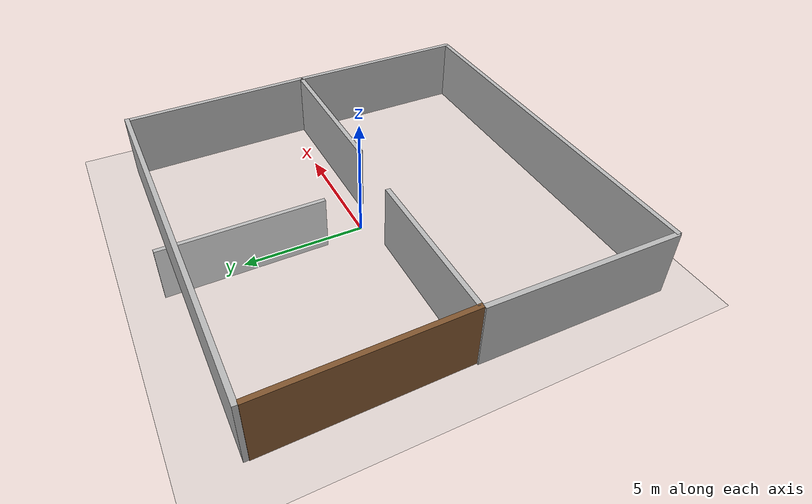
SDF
<sdf version="1.4">
 <world name="default">
  <light name="sun" type="directional">
   <pose>0 0 10 0 -0 0</pose>
   <diffuse>0.8 0.8 0.8 1</diffuse>
   <specular>0.2 0.2 0.2 1</specular>
   <attenuation>
    <range>1000</range>
    <constant>0.9</constant>
    <linear>0.01</linear>
    <quadratic>0.001</quadratic>
   </attenuation>
   <direction>-0.5 0.1 -0.9</direction>
  </light>
  <model name="ground_plane">
   <static>1</static>
   <link name="link">
    <collision name="collision">
     <geometry><plane><normal>0 0 1</normal><size>100 100</size></plane></geometry>
     <surface><friction><ode><mu>100</mu><mu2>50</mu2></ode></friction></surface>
    </collision>
    <visual name="visual">
     <cast_shadows>0</cast_shadows>
     <geometry><plane><normal>0 0 1</normal><size>100 100</size></plane></geometry>
     <material>
      <script><uri>file://media/materials/scripts/gazebo.material</uri><name>Gazebo/Grey</name></script>
     </material>
    </visual>
    <velocity_decay><linear>0</linear><angular>0</angular></velocity_decay>
   </link>
  </model>
  <physics type="ode">
   <max_step_size>0.001</max_step_size>
   <real_time_factor>1</real_time_factor>
   <real_time_update_rate>1000</real_time_update_rate>
   <gravity>0 0 -9.8</gravity>
  </physics>
  <scene><ambient>0.4 0.4 0.4 1</ambient><background>0.7 0.7 0.7 1</background><shadows>1</shadows></scene>
  <spherical_coordinates>
   <surface_model>EARTH_WGS84</surface_model>
   <latitude_deg>0</latitude_deg>
   <longitude_deg>0</longitude_deg>
   <elevation>0</elevation>
   <heading_deg>0</heading_deg>
  </spherical_coordinates>
  <model name="center_wall">
   <static>1</static>
   <link name="link">
    <pose>0 0 1.4 0 -0 0</pose>
    <collision name="collision"><geometry><box><size>8 0.2 2.8</size></box></geometry></collision>
    <visual name="visual">
     <cast_shadows>0</cast_shadows>
     <geometry><box><size>8 0.2 2.8</size></box></geometry>
     <material>
      <script>
       <uri>model://center_wall/materials/scripts</uri>
       <uri>model://center_wall/materials/textures</uri>
       <name>vrc/center_wall_brick</name>
      </script>
     </material>
    </visual>
    <velocity_decay><linear>0</linear><angular>0</angular></velocity_decay>
   </link>
   <pose>8.0514 -4.71003 0 0 -0 1.57906</pose>
  </model>
  <model name="center_wall_0">
   <static>1</static>
   <link name="link">
    <pose>0 0 1.4 0 -0 0</pose>
    <collision name="collision"><geometry><box><size>8 0.2 2.8</size></box></geometry></collision>
    <visual name="visual">
     <cast_shadows>0</cast_shadows>
     <geometry><box><size>8 0.2 2.8</size></box></geometry>
     <material>
      <script>
       <uri>model://center_wall/materials/scripts</uri>
       <uri>model://center_wall/materials/textures</uri>
       <name>vrc/center_wall_stone</name>
      </script>
     </material>
    </visual>
    <velocity_decay><linear>0</linear><angular>0</angular></velocity_decay>
   </link>
   <pose>4 4 -4.22261 0 0 -1.56344</pose>
  </model>
  <model name="center_wall_1">
   <static>1</static>
   <link name="link">
    <pose>0 0 1.4 0 -0 0</pose>
    <collision name="collision"><geometry><box><size>8 0.2 2.8</size></box></geometry></collision>
    <visual name="visual">
     <cast_shadows>0</cast_shadows>
     <geometry><box><size>8 0.2 2.8</size></box></geometry>
     <material>
      <script>
       <uri>model://center_wall/materials/scripts</uri>
       <uri>model://center_wall/materials/textures</uri>
       <name>vrc/center_wall_stone</name>
      </script>
     </material>
    </visual>
    <velocity_decay><linear>0</linear><angular>0</angular></velocity_decay>
   </link>
   <pose>7.95392 3.34191 0 0 0 -1.55165</pose>
  </model>
  <model name="center_wall_2">
   <static>1</static>
   <link name="link">
    <pose>0 0 1.4 0 -0 0</pose>
    <collision name="collision"><geometry><box><size>16 0.2 2.8</size></box></geometry></collision>
    <visual name="visual">
     <cast_shadows>0</cast_shadows>
     <geometry><box><size>16 0.2 2.8</size></box></geometry>
     <material>
      <script>
       <uri>model://center_wall/materials/scripts</uri>
       <uri>model://center_wall/materials/textures</uri>
       <name>vrc/center_wall_simple</name>
      </script>
     </material>
    </visual>
    <velocity_decay><linear>0</linear><angular>0</angular></velocity_decay>
   </link>
   <pose>0 7.44859 0 0 -0 0</pose>
  </model>
  <model name="center_wall_3">
   <static>1</static>
   <link name="link">
    <pose>0 0 1.4 0 -0 0</pose>
    <collision name="collision"><geometry><box><size>16 0.2 2.8</size></box></geometry></collision>
    <visual name="visual">
     <cast_shadows>0</cast_shadows>
     <geometry><box><size>16 0.2 2.8</size></box></geometry>
     <material>
      <script>
       <uri>model://center_wall/materials/scripts</uri>
       <uri>model://center_wall/materials/textures</uri>
       <name>vrc/center_wall_pebbles</name>
      </script>
     </material>
    </visual>
    <velocity_decay><linear>0</linear><angular>0</angular></velocity_decay>
   </link>
   <pose>-0.011894 -8.62507 0 0 -0 0</pose>
  </model>
  <model name="center_wall_4">
   <static>1</static>
   <link name="link">
    <pose>0 0 1.4 0 -0 0</pose>
    <collision name="collision"><geometry><box><size>8 0.2 2.8</size></box></geometry></collision>
    <visual name="visual">
     <cast_shadows>0</cast_shadows>
     <geometry><box><size>8 0.2 2.8</size></box></geometry>
     <material>
      <script>
       <uri>model://center_wall/materials/scripts</uri>
       <uri>model://center_wall/materials/textures</uri>
       <name>vrc/center_wall_triangles</name>
      </script>
     </material>
    </visual>
    <velocity_decay><linear>0</linear><angular>0</angular></velocity_decay>
   </link>
   <pose>-7.94697 -4.63362 0 0 0 -1.58126</pose>
  </model>
  <model name="center_wall_5">
   <static>1</static>
   <link name="link">
    <pose>0 0 1.4 0 -0 0</pose>
    <collision name="collision"><geometry><box><size>8 0.2 2.8</size></box></geometry></collision>
    <visual name="visual">
     <cast_shadows>0</cast_shadows>
     <geometry><box><size>8 0.2 2.8</size></box></geometry>
     <material>
      <script>
       <uri>model://center_wall/materials/scripts</uri>
       <uri>model://center_wall/materials/textures</uri>
       <name>vrc/center_wall_brown</name>
      </script>
     </material>
    </visual>
    <velocity_decay><linear>0</linear><angular>0</angular></velocity_decay>
   </link>
   <pose>-7.88171 3.36243 0 0 -0 1.58105</pose>
  </model>
  <model name="center_wall_6">
   <static>1</static>
   <link name="link">
    <pose>0 0 1.4 0 -0 0</pose>
    <collision name="collision"><geometry><box><size>6.5 0.2 2.8</size></box></geometry></collision>
    <visual name="visual">
     <cast_shadows>0</cast_shadows>
     <geometry><box><size>6.5 0.2 2.8</size></box></geometry>
     <material>
      <script>
       <uri>model://center_wall/materials/scripts</uri>
       <uri>model://center_wall/materials/textures</uri>
       <name>vrc/center_wall_square</name>
      </script>
     </material>
    </visual>
    <velocity_decay><linear>0</linear><angular>0</angular></velocity_decay>
   </link>
   <pose>-4.55938 -0.552066 0 0 -0 0</pose>
  </model>
  <model name="center_wall_7">
   <static>1</static>
   <link name="link">
    <pose>0 0 1.4 0 -0 0</pose>
    <collision name="collision"><geometry><box><size>6.5 0.2 2.8</size></box></geometry></collision>
    <visual name="visual">
     <cast_shadows>0</cast_shadows>
     <geometry><box><size>6.5 0.2 2.8</size></box></geometry>
     <material>
      <script>
       <uri>model://center_wall/materials/scripts</uri>
       <uri>model://center_wall/materials/textures</uri>
       <name>vrc/center_wall_design</name>
      </script>
     </material>
    </visual>
    <velocity_decay><linear>0</linear><angular>0</angular></velocity_decay>
   </link>
   <pose>4.64222 -0.66426 0 0 -0 0</pose>
  </model>
 </world>
</sdf>
